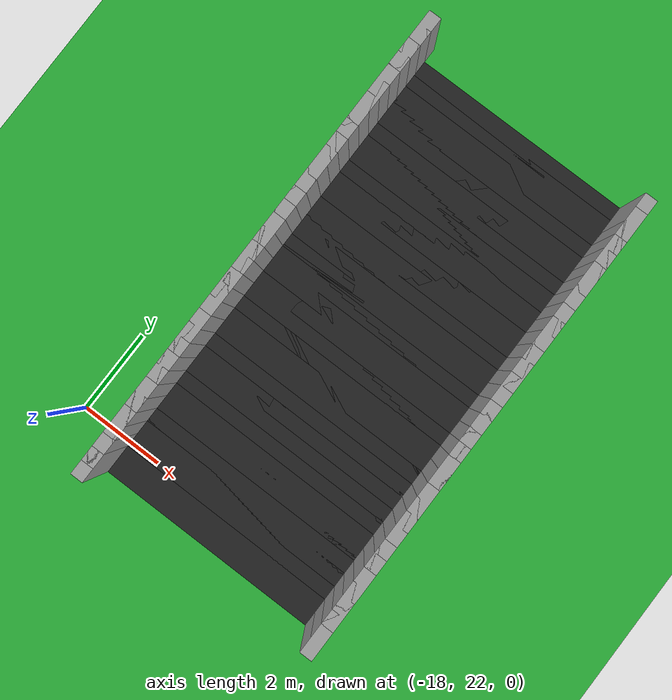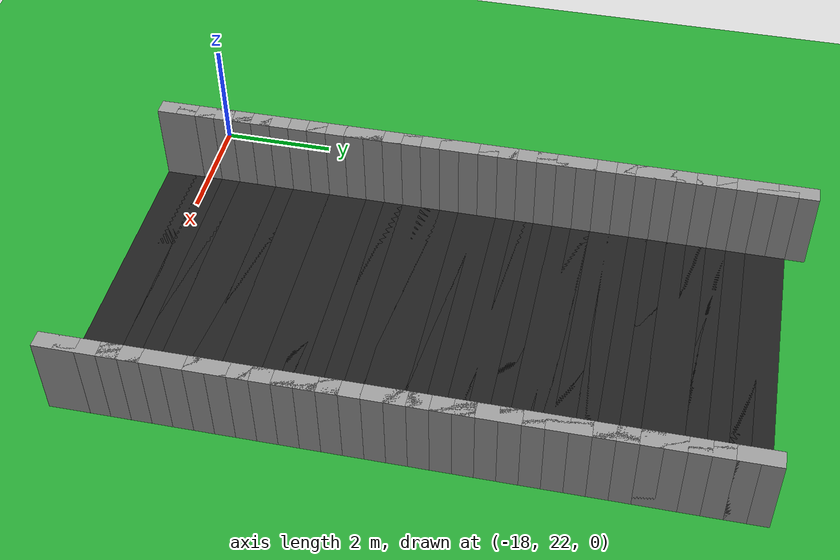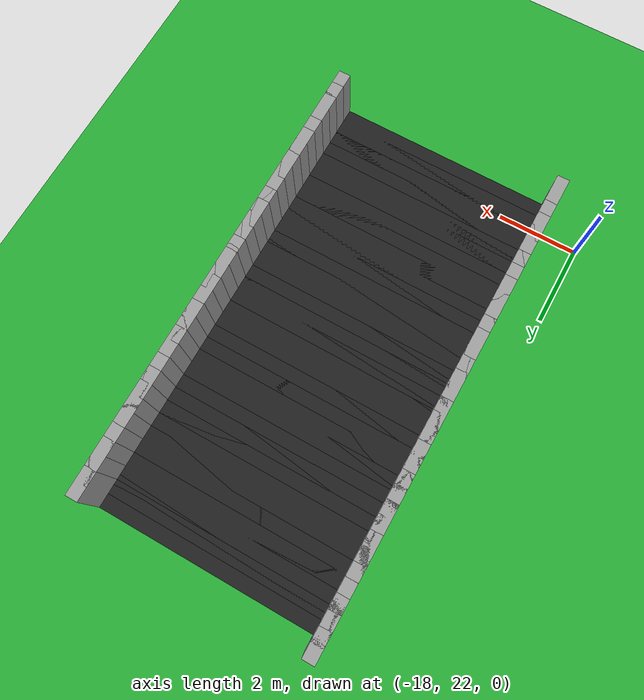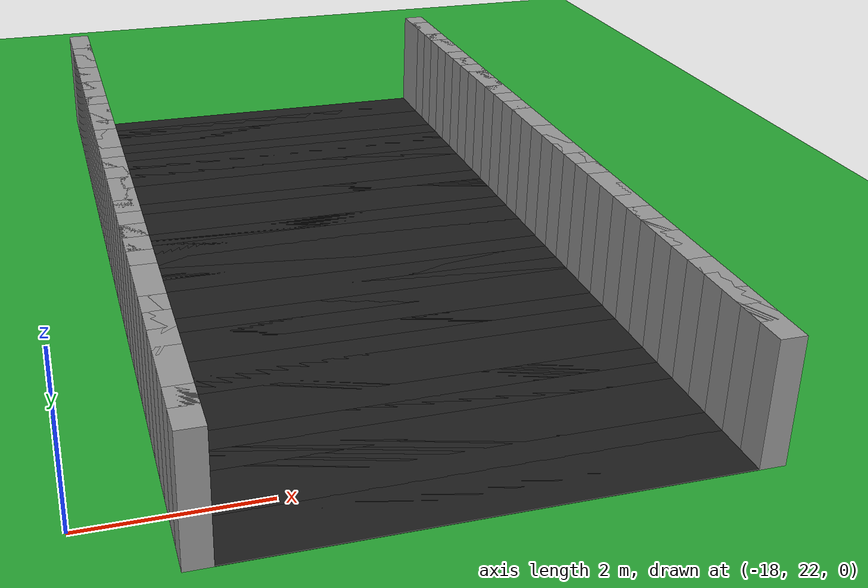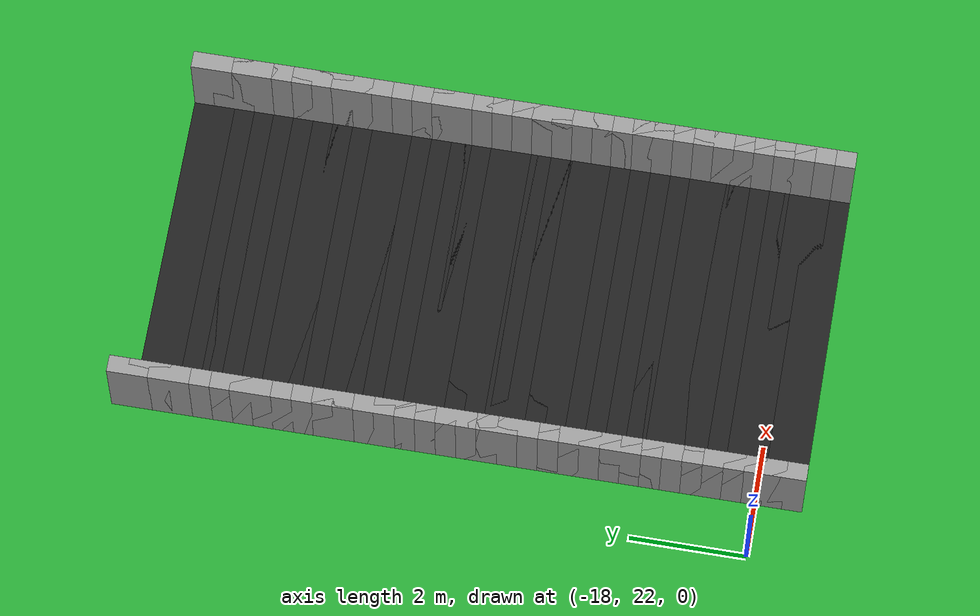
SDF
<sdf version="1.6">
 <world name="loop_speedloop">
  <include><uri>model://sun</uri></include>
  <model name="ground_plane">
   <static>true</static>
   <link name="link">
    <collision name="collision">
     <surface><friction><ode><mu>100</mu><mu2>50</mu2></ode></friction></surface>
     <geometry><plane><normal>0 0 1</normal><size>120 120</size></plane></geometry>
    </collision>
    <visual name="visual">
     <geometry><plane><normal>0 0 1</normal><size>120 120</size></plane></geometry>
     <material>
      <script><uri>file://media/materials/scripts/gazebo.material</uri><name>Gazebo/Green</name></script>
     </material>
    </visual>
   </link>
  </model>
  <model name="curbR_403">
   <static>true</static>
   <pose>-16.900 32.772 0.750 0 0 -1.57080</pose>
   <link name="link">
    <collision name="collision"><geometry><box><size>0.711 0.300 1.500</size></box></geometry></collision>
    <visual name="visual">
     <geometry><box><size>0.711 0.300 1.500</size></box></geometry>
     <material>
      <script><uri>file://media/materials/scripts/gazebo.material</uri><name>Gazebo/Grey</name></script>
     </material>
    </visual>
   </link>
  </model>
  <model name="asphalt_404">
   <static>true</static>
   <pose>-14.000 32.421 0.005 0 0 -1.57080</pose>
   <link name="link">
    <visual name="visual">
     <geometry><box><size>0.711 5.500 0.010</size></box></geometry>
     <material>
      <script><uri>file://media/materials/scripts/gazebo.material</uri><name>Gazebo/Black</name></script>
     </material>
    </visual>
   </link>
  </model>
  <model name="curbL_404">
   <static>true</static>
   <pose>-11.100 32.421 0.750 0 0 -1.57080</pose>
   <link name="link">
    <collision name="collision"><geometry><box><size>0.711 0.300 1.500</size></box></geometry></collision>
    <visual name="visual">
     <geometry><box><size>0.711 0.300 1.500</size></box></geometry>
     <material>
      <script><uri>file://media/materials/scripts/gazebo.material</uri><name>Gazebo/Grey</name></script>
     </material>
    </visual>
   </link>
  </model>
  <model name="curbR_404">
   <static>true</static>
   <pose>-16.900 32.421 0.750 0 0 -1.57080</pose>
   <link name="link">
    <collision name="collision"><geometry><box><size>0.711 0.300 1.500</size></box></geometry></collision>
    <visual name="visual">
     <geometry><box><size>0.711 0.300 1.500</size></box></geometry>
     <material>
      <script><uri>file://media/materials/scripts/gazebo.material</uri><name>Gazebo/Grey</name></script>
     </material>
    </visual>
   </link>
  </model>
  <model name="asphalt_405">
   <static>true</static>
   <pose>-14.000 32.071 0.005 0 0 -1.57080</pose>
   <link name="link">
    <visual name="visual">
     <geometry><box><size>0.711 5.500 0.010</size></box></geometry>
     <material>
      <script><uri>file://media/materials/scripts/gazebo.material</uri><name>Gazebo/Black</name></script>
     </material>
    </visual>
   </link>
  </model>
  <model name="curbL_405">
   <static>true</static>
   <pose>-11.100 32.071 0.750 0 0 -1.57080</pose>
   <link name="link">
    <collision name="collision"><geometry><box><size>0.711 0.300 1.500</size></box></geometry></collision>
    <visual name="visual">
     <geometry><box><size>0.711 0.300 1.500</size></box></geometry>
     <material>
      <script><uri>file://media/materials/scripts/gazebo.material</uri><name>Gazebo/Grey</name></script>
     </material>
    </visual>
   </link>
  </model>
  <model name="curbR_405">
   <static>true</static>
   <pose>-16.900 32.071 0.750 0 0 -1.57080</pose>
   <link name="link">
    <collision name="collision"><geometry><box><size>0.711 0.300 1.500</size></box></geometry></collision>
    <visual name="visual">
     <geometry><box><size>0.711 0.300 1.500</size></box></geometry>
     <material>
      <script><uri>file://media/materials/scripts/gazebo.material</uri><name>Gazebo/Grey</name></script>
     </material>
    </visual>
   </link>
  </model>
  <model name="asphalt_406">
   <static>true</static>
   <pose>-14.000 31.720 0.005 0 0 -1.57080</pose>
   <link name="link">
    <visual name="visual">
     <geometry><box><size>0.711 5.500 0.010</size></box></geometry>
     <material>
      <script><uri>file://media/materials/scripts/gazebo.material</uri><name>Gazebo/Black</name></script>
     </material>
    </visual>
   </link>
  </model>
  <model name="curbL_406">
   <static>true</static>
   <pose>-11.100 31.720 0.750 0 0 -1.57080</pose>
   <link name="link">
    <collision name="collision"><geometry><box><size>0.711 0.300 1.500</size></box></geometry></collision>
    <visual name="visual">
     <geometry><box><size>0.711 0.300 1.500</size></box></geometry>
     <material>
      <script><uri>file://media/materials/scripts/gazebo.material</uri><name>Gazebo/Grey</name></script>
     </material>
    </visual>
   </link>
  </model>
  <model name="curbR_406">
   <static>true</static>
   <pose>-16.900 31.720 0.750 0 0 -1.57080</pose>
   <link name="link">
    <collision name="collision"><geometry><box><size>0.711 0.300 1.500</size></box></geometry></collision>
    <visual name="visual">
     <geometry><box><size>0.711 0.300 1.500</size></box></geometry>
     <material>
      <script><uri>file://media/materials/scripts/gazebo.material</uri><name>Gazebo/Grey</name></script>
     </material>
    </visual>
   </link>
  </model>
  <model name="asphalt_407">
   <static>true</static>
   <pose>-14.000 31.369 0.005 0 0 -1.57080</pose>
   <link name="link">
    <visual name="visual">
     <geometry><box><size>0.711 5.500 0.010</size></box></geometry>
     <material>
      <script><uri>file://media/materials/scripts/gazebo.material</uri><name>Gazebo/Black</name></script>
     </material>
    </visual>
   </link>
  </model>
  <model name="curbL_407">
   <static>true</static>
   <pose>-11.100 31.369 0.750 0 0 -1.57080</pose>
   <link name="link">
    <collision name="collision"><geometry><box><size>0.711 0.300 1.500</size></box></geometry></collision>
    <visual name="visual">
     <geometry><box><size>0.711 0.300 1.500</size></box></geometry>
     <material>
      <script><uri>file://media/materials/scripts/gazebo.material</uri><name>Gazebo/Grey</name></script>
     </material>
    </visual>
   </link>
  </model>
  <model name="curbR_407">
   <static>true</static>
   <pose>-16.900 31.369 0.750 0 0 -1.57080</pose>
   <link name="link">
    <collision name="collision"><geometry><box><size>0.711 0.300 1.500</size></box></geometry></collision>
    <visual name="visual">
     <geometry><box><size>0.711 0.300 1.500</size></box></geometry>
     <material>
      <script><uri>file://media/materials/scripts/gazebo.material</uri><name>Gazebo/Grey</name></script>
     </material>
    </visual>
   </link>
  </model>
  <model name="asphalt_408">
   <static>true</static>
   <pose>-14.000 31.018 0.005 0 0 -1.57080</pose>
   <link name="link">
    <visual name="visual">
     <geometry><box><size>0.711 5.500 0.010</size></box></geometry>
     <material>
      <script><uri>file://media/materials/scripts/gazebo.material</uri><name>Gazebo/Black</name></script>
     </material>
    </visual>
   </link>
  </model>
  <model name="curbL_408">
   <static>true</static>
   <pose>-11.100 31.018 0.750 0 0 -1.57080</pose>
   <link name="link">
    <collision name="collision"><geometry><box><size>0.711 0.300 1.500</size></box></geometry></collision>
    <visual name="visual">
     <geometry><box><size>0.711 0.300 1.500</size></box></geometry>
     <material>
      <script><uri>file://media/materials/scripts/gazebo.material</uri><name>Gazebo/Grey</name></script>
     </material>
    </visual>
   </link>
  </model>
  <model name="curbR_408">
   <static>true</static>
   <pose>-16.900 31.018 0.750 0 0 -1.57080</pose>
   <link name="link">
    <collision name="collision"><geometry><box><size>0.711 0.300 1.500</size></box></geometry></collision>
    <visual name="visual">
     <geometry><box><size>0.711 0.300 1.500</size></box></geometry>
     <material>
      <script><uri>file://media/materials/scripts/gazebo.material</uri><name>Gazebo/Grey</name></script>
     </material>
    </visual>
   </link>
  </model>
  <model name="asphalt_409">
   <static>true</static>
   <pose>-14.000 30.667 0.005 0 0 -1.57080</pose>
   <link name="link">
    <visual name="visual">
     <geometry><box><size>0.711 5.500 0.010</size></box></geometry>
     <material>
      <script><uri>file://media/materials/scripts/gazebo.material</uri><name>Gazebo/Black</name></script>
     </material>
    </visual>
   </link>
  </model>
  <model name="curbL_409">
   <static>true</static>
   <pose>-11.100 30.667 0.750 0 0 -1.57080</pose>
   <link name="link">
    <collision name="collision"><geometry><box><size>0.711 0.300 1.500</size></box></geometry></collision>
    <visual name="visual">
     <geometry><box><size>0.711 0.300 1.500</size></box></geometry>
     <material>
      <script><uri>file://media/materials/scripts/gazebo.material</uri><name>Gazebo/Grey</name></script>
     </material>
    </visual>
   </link>
  </model>
  <model name="curbR_409">
   <static>true</static>
   <pose>-16.900 30.667 0.750 0 0 -1.57080</pose>
   <link name="link">
    <collision name="collision"><geometry><box><size>0.711 0.300 1.500</size></box></geometry></collision>
    <visual name="visual">
     <geometry><box><size>0.711 0.300 1.500</size></box></geometry>
     <material>
      <script><uri>file://media/materials/scripts/gazebo.material</uri><name>Gazebo/Grey</name></script>
     </material>
    </visual>
   </link>
  </model>
  <model name="asphalt_410">
   <static>true</static>
   <pose>-14.000 30.316 0.005 0 0 -1.57080</pose>
   <link name="link">
    <visual name="visual">
     <geometry><box><size>0.711 5.500 0.010</size></box></geometry>
     <material>
      <script><uri>file://media/materials/scripts/gazebo.material</uri><name>Gazebo/Black</name></script>
     </material>
    </visual>
   </link>
  </model>
  <model name="curbL_410">
   <static>true</static>
   <pose>-11.100 30.316 0.750 0 0 -1.57080</pose>
   <link name="link">
    <collision name="collision"><geometry><box><size>0.711 0.300 1.500</size></box></geometry></collision>
    <visual name="visual">
     <geometry><box><size>0.711 0.300 1.500</size></box></geometry>
     <material>
      <script><uri>file://media/materials/scripts/gazebo.material</uri><name>Gazebo/Grey</name></script>
     </material>
    </visual>
   </link>
  </model>
  <model name="curbR_410">
   <static>true</static>
   <pose>-16.900 30.316 0.750 0 0 -1.57080</pose>
   <link name="link">
    <collision name="collision"><geometry><box><size>0.711 0.300 1.500</size></box></geometry></collision>
    <visual name="visual">
     <geometry><box><size>0.711 0.300 1.500</size></box></geometry>
     <material>
      <script><uri>file://media/materials/scripts/gazebo.material</uri><name>Gazebo/Grey</name></script>
     </material>
    </visual>
   </link>
  </model>
  <model name="asphalt_411">
   <static>true</static>
   <pose>-14.000 29.965 0.005 0 0 -1.57080</pose>
   <link name="link">
    <visual name="visual">
     <geometry><box><size>0.711 5.500 0.010</size></box></geometry>
     <material>
      <script><uri>file://media/materials/scripts/gazebo.material</uri><name>Gazebo/Black</name></script>
     </material>
    </visual>
   </link>
  </model>
  <model name="curbL_411">
   <static>true</static>
   <pose>-11.100 29.965 0.750 0 0 -1.57080</pose>
   <link name="link">
    <collision name="collision"><geometry><box><size>0.711 0.300 1.500</size></box></geometry></collision>
    <visual name="visual">
     <geometry><box><size>0.711 0.300 1.500</size></box></geometry>
     <material>
      <script><uri>file://media/materials/scripts/gazebo.material</uri><name>Gazebo/Grey</name></script>
     </material>
    </visual>
   </link>
  </model>
  <model name="curbR_411">
   <static>true</static>
   <pose>-16.900 29.965 0.750 0 0 -1.57080</pose>
   <link name="link">
    <collision name="collision"><geometry><box><size>0.711 0.300 1.500</size></box></geometry></collision>
    <visual name="visual">
     <geometry><box><size>0.711 0.300 1.500</size></box></geometry>
     <material>
      <script><uri>file://media/materials/scripts/gazebo.material</uri><name>Gazebo/Grey</name></script>
     </material>
    </visual>
   </link>
  </model>
  <model name="asphalt_412">
   <static>true</static>
   <pose>-14.000 29.614 0.005 0 0 -1.57080</pose>
   <link name="link">
    <visual name="visual">
     <geometry><box><size>0.711 5.500 0.010</size></box></geometry>
     <material>
      <script><uri>file://media/materials/scripts/gazebo.material</uri><name>Gazebo/Black</name></script>
     </material>
    </visual>
   </link>
  </model>
  <model name="curbL_412">
   <static>true</static>
   <pose>-11.100 29.614 0.750 0 0 -1.57080</pose>
   <link name="link">
    <collision name="collision"><geometry><box><size>0.711 0.300 1.500</size></box></geometry></collision>
    <visual name="visual">
     <geometry><box><size>0.711 0.300 1.500</size></box></geometry>
     <material>
      <script><uri>file://media/materials/scripts/gazebo.material</uri><name>Gazebo/Grey</name></script>
     </material>
    </visual>
   </link>
  </model>
  <model name="curbR_412">
   <static>true</static>
   <pose>-16.900 29.614 0.750 0 0 -1.57080</pose>
   <link name="link">
    <collision name="collision"><geometry><box><size>0.711 0.300 1.500</size></box></geometry></collision>
    <visual name="visual">
     <geometry><box><size>0.711 0.300 1.500</size></box></geometry>
     <material>
      <script><uri>file://media/materials/scripts/gazebo.material</uri><name>Gazebo/Grey</name></script>
     </material>
    </visual>
   </link>
  </model>
  <model name="asphalt_413">
   <static>true</static>
   <pose>-14.000 29.264 0.005 0 0 -1.57080</pose>
   <link name="link">
    <visual name="visual">
     <geometry><box><size>0.711 5.500 0.010</size></box></geometry>
     <material>
      <script><uri>file://media/materials/scripts/gazebo.material</uri><name>Gazebo/Black</name></script>
     </material>
    </visual>
   </link>
  </model>
  <model name="curbL_413">
   <static>true</static>
   <pose>-11.100 29.264 0.750 0 0 -1.57080</pose>
   <link name="link">
    <collision name="collision"><geometry><box><size>0.711 0.300 1.500</size></box></geometry></collision>
    <visual name="visual">
     <geometry><box><size>0.711 0.300 1.500</size></box></geometry>
     <material>
      <script><uri>file://media/materials/scripts/gazebo.material</uri><name>Gazebo/Grey</name></script>
     </material>
    </visual>
   </link>
  </model>
  <model name="curbR_413">
   <static>true</static>
   <pose>-16.900 29.264 0.750 0 0 -1.57080</pose>
   <link name="link">
    <collision name="collision"><geometry><box><size>0.711 0.300 1.500</size></box></geometry></collision>
    <visual name="visual">
     <geometry><box><size>0.711 0.300 1.500</size></box></geometry>
     <material>
      <script><uri>file://media/materials/scripts/gazebo.material</uri><name>Gazebo/Grey</name></script>
     </material>
    </visual>
   </link>
  </model>
  <model name="asphalt_414">
   <static>true</static>
   <pose>-14.000 28.913 0.005 0 0 -1.57080</pose>
   <link name="link">
    <visual name="visual">
     <geometry><box><size>0.711 5.500 0.010</size></box></geometry>
     <material>
      <script><uri>file://media/materials/scripts/gazebo.material</uri><name>Gazebo/Black</name></script>
     </material>
    </visual>
   </link>
  </model>
  <model name="curbL_414">
   <static>true</static>
   <pose>-11.100 28.913 0.750 0 0 -1.57080</pose>
   <link name="link">
    <collision name="collision"><geometry><box><size>0.711 0.300 1.500</size></box></geometry></collision>
    <visual name="visual">
     <geometry><box><size>0.711 0.300 1.500</size></box></geometry>
     <material>
      <script><uri>file://media/materials/scripts/gazebo.material</uri><name>Gazebo/Grey</name></script>
     </material>
    </visual>
   </link>
  </model>
  <model name="curbR_414">
   <static>true</static>
   <pose>-16.900 28.913 0.750 0 0 -1.57080</pose>
   <link name="link">
    <collision name="collision"><geometry><box><size>0.711 0.300 1.500</size></box></geometry></collision>
    <visual name="visual">
     <geometry><box><size>0.711 0.300 1.500</size></box></geometry>
     <material>
      <script><uri>file://media/materials/scripts/gazebo.material</uri><name>Gazebo/Grey</name></script>
     </material>
    </visual>
   </link>
  </model>
  <model name="asphalt_415">
   <static>true</static>
   <pose>-14.000 28.562 0.005 0 0 -1.57080</pose>
   <link name="link">
    <visual name="visual">
     <geometry><box><size>0.711 5.500 0.010</size></box></geometry>
     <material>
      <script><uri>file://media/materials/scripts/gazebo.material</uri><name>Gazebo/Black</name></script>
     </material>
    </visual>
   </link>
  </model>
  <model name="curbL_415">
   <static>true</static>
   <pose>-11.100 28.562 0.750 0 0 -1.57080</pose>
   <link name="link">
    <collision name="collision"><geometry><box><size>0.711 0.300 1.500</size></box></geometry></collision>
    <visual name="visual">
     <geometry><box><size>0.711 0.300 1.500</size></box></geometry>
     <material>
      <script><uri>file://media/materials/scripts/gazebo.material</uri><name>Gazebo/Grey</name></script>
     </material>
    </visual>
   </link>
  </model>
  <model name="curbR_415">
   <static>true</static>
   <pose>-16.900 28.562 0.750 0 0 -1.57080</pose>
   <link name="link">
    <collision name="collision"><geometry><box><size>0.711 0.300 1.500</size></box></geometry></collision>
    <visual name="visual">
     <geometry><box><size>0.711 0.300 1.500</size></box></geometry>
     <material>
      <script><uri>file://media/materials/scripts/gazebo.material</uri><name>Gazebo/Grey</name></script>
     </material>
    </visual>
   </link>
  </model>
  <model name="asphalt_416">
   <static>true</static>
   <pose>-14.000 28.211 0.005 0 0 -1.57080</pose>
   <link name="link">
    <visual name="visual">
     <geometry><box><size>0.711 5.500 0.010</size></box></geometry>
     <material>
      <script><uri>file://media/materials/scripts/gazebo.material</uri><name>Gazebo/Black</name></script>
     </material>
    </visual>
   </link>
  </model>
  <model name="curbL_416">
   <static>true</static>
   <pose>-11.100 28.211 0.750 0 0 -1.57080</pose>
   <link name="link">
    <collision name="collision"><geometry><box><size>0.711 0.300 1.500</size></box></geometry></collision>
    <visual name="visual">
     <geometry><box><size>0.711 0.300 1.500</size></box></geometry>
     <material>
      <script><uri>file://media/materials/scripts/gazebo.material</uri><name>Gazebo/Grey</name></script>
     </material>
    </visual>
   </link>
  </model>
  <model name="curbR_416">
   <static>true</static>
   <pose>-16.900 28.211 0.750 0 0 -1.57080</pose>
   <link name="link">
    <collision name="collision"><geometry><box><size>0.711 0.300 1.500</size></box></geometry></collision>
    <visual name="visual">
     <geometry><box><size>0.711 0.300 1.500</size></box></geometry>
     <material>
      <script><uri>file://media/materials/scripts/gazebo.material</uri><name>Gazebo/Grey</name></script>
     </material>
    </visual>
   </link>
  </model>
  <model name="asphalt_417">
   <static>true</static>
   <pose>-14.000 27.860 0.005 0 0 -1.57080</pose>
   <link name="link">
    <visual name="visual">
     <geometry><box><size>0.711 5.500 0.010</size></box></geometry>
     <material>
      <script><uri>file://media/materials/scripts/gazebo.material</uri><name>Gazebo/Black</name></script>
     </material>
    </visual>
   </link>
  </model>
  <model name="curbL_417">
   <static>true</static>
   <pose>-11.100 27.860 0.750 0 0 -1.57080</pose>
   <link name="link">
    <collision name="collision"><geometry><box><size>0.711 0.300 1.500</size></box></geometry></collision>
    <visual name="visual">
     <geometry><box><size>0.711 0.300 1.500</size></box></geometry>
     <material>
      <script><uri>file://media/materials/scripts/gazebo.material</uri><name>Gazebo/Grey</name></script>
     </material>
    </visual>
   </link>
  </model>
  <model name="curbR_417">
   <static>true</static>
   <pose>-16.900 27.860 0.750 0 0 -1.57080</pose>
   <link name="link">
    <collision name="collision"><geometry><box><size>0.711 0.300 1.500</size></box></geometry></collision>
    <visual name="visual">
     <geometry><box><size>0.711 0.300 1.500</size></box></geometry>
     <material>
      <script><uri>file://media/materials/scripts/gazebo.material</uri><name>Gazebo/Grey</name></script>
     </material>
    </visual>
   </link>
  </model>
  <model name="asphalt_418">
   <static>true</static>
   <pose>-14.000 27.509 0.005 0 0 -1.57080</pose>
   <link name="link">
    <visual name="visual">
     <geometry><box><size>0.711 5.500 0.010</size></box></geometry>
     <material>
      <script><uri>file://media/materials/scripts/gazebo.material</uri><name>Gazebo/Black</name></script>
     </material>
    </visual>
   </link>
  </model>
  <model name="curbL_418">
   <static>true</static>
   <pose>-11.100 27.509 0.750 0 0 -1.57080</pose>
   <link name="link">
    <collision name="collision"><geometry><box><size>0.711 0.300 1.500</size></box></geometry></collision>
    <visual name="visual">
     <geometry><box><size>0.711 0.300 1.500</size></box></geometry>
     <material>
      <script><uri>file://media/materials/scripts/gazebo.material</uri><name>Gazebo/Grey</name></script>
     </material>
    </visual>
   </link>
  </model>
  <model name="curbR_418">
   <static>true</static>
   <pose>-16.900 27.509 0.750 0 0 -1.57080</pose>
   <link name="link">
    <collision name="collision"><geometry><box><size>0.711 0.300 1.500</size></box></geometry></collision>
    <visual name="visual">
     <geometry><box><size>0.711 0.300 1.500</size></box></geometry>
     <material>
      <script><uri>file://media/materials/scripts/gazebo.material</uri><name>Gazebo/Grey</name></script>
     </material>
    </visual>
   </link>
  </model>
  <model name="asphalt_419">
   <static>true</static>
   <pose>-14.000 27.158 0.005 0 0 -1.57080</pose>
   <link name="link">
    <visual name="visual">
     <geometry><box><size>0.711 5.500 0.010</size></box></geometry>
     <material>
      <script><uri>file://media/materials/scripts/gazebo.material</uri><name>Gazebo/Black</name></script>
     </material>
    </visual>
   </link>
  </model>
  <model name="curbL_419">
   <static>true</static>
   <pose>-11.100 27.158 0.750 0 0 -1.57080</pose>
   <link name="link">
    <collision name="collision"><geometry><box><size>0.711 0.300 1.500</size></box></geometry></collision>
    <visual name="visual">
     <geometry><box><size>0.711 0.300 1.500</size></box></geometry>
     <material>
      <script><uri>file://media/materials/scripts/gazebo.material</uri><name>Gazebo/Grey</name></script>
     </material>
    </visual>
   </link>
  </model>
  <model name="curbR_419">
   <static>true</static>
   <pose>-16.900 27.158 0.750 0 0 -1.57080</pose>
   <link name="link">
    <collision name="collision"><geometry><box><size>0.711 0.300 1.500</size></box></geometry></collision>
    <visual name="visual">
     <geometry><box><size>0.711 0.300 1.500</size></box></geometry>
     <material>
      <script><uri>file://media/materials/scripts/gazebo.material</uri><name>Gazebo/Grey</name></script>
     </material>
    </visual>
   </link>
  </model>
  <model name="asphalt_420">
   <static>true</static>
   <pose>-14.000 26.807 0.005 0 0 -1.57080</pose>
   <link name="link">
    <visual name="visual">
     <geometry><box><size>0.711 5.500 0.010</size></box></geometry>
     <material>
      <script><uri>file://media/materials/scripts/gazebo.material</uri><name>Gazebo/Black</name></script>
     </material>
    </visual>
   </link>
  </model>
  <model name="curbL_420">
   <static>true</static>
   <pose>-11.100 26.807 0.750 0 0 -1.57080</pose>
   <link name="link">
    <collision name="collision"><geometry><box><size>0.711 0.300 1.500</size></box></geometry></collision>
    <visual name="visual">
     <geometry><box><size>0.711 0.300 1.500</size></box></geometry>
     <material>
      <script><uri>file://media/materials/scripts/gazebo.material</uri><name>Gazebo/Grey</name></script>
     </material>
    </visual>
   </link>
  </model>
  <model name="curbR_420">
   <static>true</static>
   <pose>-16.900 26.807 0.750 0 0 -1.57080</pose>
   <link name="link">
    <collision name="collision"><geometry><box><size>0.711 0.300 1.500</size></box></geometry></collision>
    <visual name="visual">
     <geometry><box><size>0.711 0.300 1.500</size></box></geometry>
     <material>
      <script><uri>file://media/materials/scripts/gazebo.material</uri><name>Gazebo/Grey</name></script>
     </material>
    </visual>
   </link>
  </model>
  <model name="asphalt_421">
   <static>true</static>
   <pose>-14.000 26.457 0.005 0 0 -1.57080</pose>
   <link name="link">
    <visual name="visual">
     <geometry><box><size>0.711 5.500 0.010</size></box></geometry>
     <material>
      <script><uri>file://media/materials/scripts/gazebo.material</uri><name>Gazebo/Black</name></script>
     </material>
    </visual>
   </link>
  </model>
  <model name="curbL_421">
   <static>true</static>
   <pose>-11.100 26.457 0.750 0 0 -1.57080</pose>
   <link name="link">
    <collision name="collision"><geometry><box><size>0.711 0.300 1.500</size></box></geometry></collision>
    <visual name="visual">
     <geometry><box><size>0.711 0.300 1.500</size></box></geometry>
     <material>
      <script><uri>file://media/materials/scripts/gazebo.material</uri><name>Gazebo/Grey</name></script>
     </material>
    </visual>
   </link>
  </model>
  <model name="curbR_421">
   <static>true</static>
   <pose>-16.900 26.457 0.750 0 0 -1.57080</pose>
   <link name="link">
    <collision name="collision"><geometry><box><size>0.711 0.300 1.500</size></box></geometry></collision>
    <visual name="visual">
     <geometry><box><size>0.711 0.300 1.500</size></box></geometry>
     <material>
      <script><uri>file://media/materials/scripts/gazebo.material</uri><name>Gazebo/Grey</name></script>
     </material>
    </visual>
   </link>
  </model>
  <model name="asphalt_422">
   <static>true</static>
   <pose>-14.000 26.106 0.005 0 0 -1.57080</pose>
   <link name="link">
    <visual name="visual">
     <geometry><box><size>0.711 5.500 0.010</size></box></geometry>
     <material>
      <script><uri>file://media/materials/scripts/gazebo.material</uri><name>Gazebo/Black</name></script>
     </material>
    </visual>
   </link>
  </model>
  <model name="curbL_422">
   <static>true</static>
   <pose>-11.100 26.106 0.750 0 0 -1.57080</pose>
   <link name="link">
    <collision name="collision"><geometry><box><size>0.711 0.300 1.500</size></box></geometry></collision>
    <visual name="visual">
     <geometry><box><size>0.711 0.300 1.500</size></box></geometry>
     <material>
      <script><uri>file://media/materials/scripts/gazebo.material</uri><name>Gazebo/Grey</name></script>
     </material>
    </visual>
   </link>
  </model>
  <model name="curbR_422">
   <static>true</static>
   <pose>-16.900 26.106 0.750 0 0 -1.57080</pose>
   <link name="link">
    <collision name="collision"><geometry><box><size>0.711 0.300 1.500</size></box></geometry></collision>
    <visual name="visual">
     <geometry><box><size>0.711 0.300 1.500</size></box></geometry>
     <material>
      <script><uri>file://media/materials/scripts/gazebo.material</uri><name>Gazebo/Grey</name></script>
     </material>
    </visual>
   </link>
  </model>
  <model name="asphalt_423">
   <static>true</static>
   <pose>-14.000 25.755 0.005 0 0 -1.57080</pose>
   <link name="link">
    <visual name="visual">
     <geometry><box><size>0.711 5.500 0.010</size></box></geometry>
     <material>
      <script><uri>file://media/materials/scripts/gazebo.material</uri><name>Gazebo/Black</name></script>
     </material>
    </visual>
   </link>
  </model>
  <model name="curbL_423">
   <static>true</static>
   <pose>-11.100 25.755 0.750 0 0 -1.57080</pose>
   <link name="link">
    <collision name="collision"><geometry><box><size>0.711 0.300 1.500</size></box></geometry></collision>
    <visual name="visual">
     <geometry><box><size>0.711 0.300 1.500</size></box></geometry>
     <material>
      <script><uri>file://media/materials/scripts/gazebo.material</uri><name>Gazebo/Grey</name></script>
     </material>
    </visual>
   </link>
  </model>
  <model name="curbR_423">
   <static>true</static>
   <pose>-16.900 25.755 0.750 0 0 -1.57080</pose>
   <link name="link">
    <collision name="collision"><geometry><box><size>0.711 0.300 1.500</size></box></geometry></collision>
    <visual name="visual">
     <geometry><box><size>0.711 0.300 1.500</size></box></geometry>
     <material>
      <script><uri>file://media/materials/scripts/gazebo.material</uri><name>Gazebo/Grey</name></script>
     </material>
    </visual>
   </link>
  </model>
  <model name="asphalt_424">
   <static>true</static>
   <pose>-14.000 25.404 0.005 0 0 -1.57080</pose>
   <link name="link">
    <visual name="visual">
     <geometry><box><size>0.711 5.500 0.010</size></box></geometry>
     <material>
      <script><uri>file://media/materials/scripts/gazebo.material</uri><name>Gazebo/Black</name></script>
     </material>
    </visual>
   </link>
  </model>
  <model name="curbL_424">
   <static>true</static>
   <pose>-11.100 25.404 0.750 0 0 -1.57080</pose>
   <link name="link">
    <collision name="collision"><geometry><box><size>0.711 0.300 1.500</size></box></geometry></collision>
    <visual name="visual">
     <geometry><box><size>0.711 0.300 1.500</size></box></geometry>
     <material>
      <script><uri>file://media/materials/scripts/gazebo.material</uri><name>Gazebo/Grey</name></script>
     </material>
    </visual>
   </link>
  </model>
  <model name="curbR_424">
   <static>true</static>
   <pose>-16.900 25.404 0.750 0 0 -1.57080</pose>
   <link name="link">
    <collision name="collision"><geometry><box><size>0.711 0.300 1.500</size></box></geometry></collision>
    <visual name="visual">
     <geometry><box><size>0.711 0.300 1.500</size></box></geometry>
     <material>
      <script><uri>file://media/materials/scripts/gazebo.material</uri><name>Gazebo/Grey</name></script>
     </material>
    </visual>
   </link>
  </model>
  <model name="asphalt_425">
   <static>true</static>
   <pose>-14.000 25.053 0.005 0 0 -1.57080</pose>
   <link name="link">
    <visual name="visual">
     <geometry><box><size>0.711 5.500 0.010</size></box></geometry>
     <material>
      <script><uri>file://media/materials/scripts/gazebo.material</uri><name>Gazebo/Black</name></script>
     </material>
    </visual>
   </link>
  </model>
  <model name="curbL_425">
   <static>true</static>
   <pose>-11.100 25.053 0.750 0 0 -1.57080</pose>
   <link name="link">
    <collision name="collision"><geometry><box><size>0.711 0.300 1.500</size></box></geometry></collision>
    <visual name="visual">
     <geometry><box><size>0.711 0.300 1.500</size></box></geometry>
     <material>
      <script><uri>file://media/materials/scripts/gazebo.material</uri><name>Gazebo/Grey</name></script>
     </material>
    </visual>
   </link>
  </model>
  <model name="curbR_425">
   <static>true</static>
   <pose>-16.900 25.053 0.750 0 0 -1.57080</pose>
   <link name="link">
    <collision name="collision"><geometry><box><size>0.711 0.300 1.500</size></box></geometry></collision>
    <visual name="visual">
     <geometry><box><size>0.711 0.300 1.500</size></box></geometry>
     <material>
      <script><uri>file://media/materials/scripts/gazebo.material</uri><name>Gazebo/Grey</name></script>
     </material>
    </visual>
   </link>
  </model>
  <model name="asphalt_426">
   <static>true</static>
   <pose>-14.000 24.702 0.005 0 0 -1.57080</pose>
   <link name="link">
    <visual name="visual">
     <geometry><box><size>0.711 5.500 0.010</size></box></geometry>
     <material>
      <script><uri>file://media/materials/scripts/gazebo.material</uri><name>Gazebo/Black</name></script>
     </material>
    </visual>
   </link>
  </model>
  <model name="curbL_426">
   <static>true</static>
   <pose>-11.100 24.702 0.750 0 0 -1.57080</pose>
   <link name="link">
    <collision name="collision"><geometry><box><size>0.711 0.300 1.500</size></box></geometry></collision>
    <visual name="visual">
     <geometry><box><size>0.711 0.300 1.500</size></box></geometry>
     <material>
      <script><uri>file://media/materials/scripts/gazebo.material</uri><name>Gazebo/Grey</name></script>
     </material>
    </visual>
   </link>
  </model>
  <model name="curbR_426">
   <static>true</static>
   <pose>-16.900 24.702 0.750 0 0 -1.57080</pose>
   <link name="link">
    <collision name="collision"><geometry><box><size>0.711 0.300 1.500</size></box></geometry></collision>
    <visual name="visual">
     <geometry><box><size>0.711 0.300 1.500</size></box></geometry>
     <material>
      <script><uri>file://media/materials/scripts/gazebo.material</uri><name>Gazebo/Grey</name></script>
     </material>
    </visual>
   </link>
  </model>
  <model name="asphalt_427">
   <static>true</static>
   <pose>-14.000 24.351 0.005 0 0 -1.57080</pose>
   <link name="link">
    <visual name="visual">
     <geometry><box><size>0.711 5.500 0.010</size></box></geometry>
     <material>
      <script><uri>file://media/materials/scripts/gazebo.material</uri><name>Gazebo/Black</name></script>
     </material>
    </visual>
   </link>
  </model>
  <model name="curbL_427">
   <static>true</static>
   <pose>-11.100 24.351 0.750 0 0 -1.57080</pose>
   <link name="link">
    <collision name="collision"><geometry><box><size>0.711 0.300 1.500</size></box></geometry></collision>
    <visual name="visual">
     <geometry><box><size>0.711 0.300 1.500</size></box></geometry>
     <material>
      <script><uri>file://media/materials/scripts/gazebo.material</uri><name>Gazebo/Grey</name></script>
     </material>
    </visual>
   </link>
  </model>
  <model name="curbR_427">
   <static>true</static>
   <pose>-16.900 24.351 0.750 0 0 -1.57080</pose>
   <link name="link">
    <collision name="collision"><geometry><box><size>0.711 0.300 1.500</size></box></geometry></collision>
    <visual name="visual">
     <geometry><box><size>0.711 0.300 1.500</size></box></geometry>
     <material>
      <script><uri>file://media/materials/scripts/gazebo.material</uri><name>Gazebo/Grey</name></script>
     </material>
    </visual>
   </link>
  </model>
  <model name="asphalt_428">
   <static>true</static>
   <pose>-14.000 24.000 0.005 0 0 -1.57080</pose>
   <link name="link">
    <visual name="visual">
     <geometry><box><size>0.711 5.500 0.010</size></box></geometry>
     <material>
      <script><uri>file://media/materials/scripts/gazebo.material</uri><name>Gazebo/Black</name></script>
     </material>
    </visual>
   </link>
  </model>
  <model name="curbL_428">
   <static>true</static>
   <pose>-11.100 24.000 0.750 0 0 -1.57080</pose>
   <link name="link">
    <collision name="collision"><geometry><box><size>0.711 0.300 1.500</size></box></geometry></collision>
    <visual name="visual">
     <geometry><box><size>0.711 0.300 1.500</size></box></geometry>
     <material>
      <script><uri>file://media/materials/scripts/gazebo.material</uri><name>Gazebo/Grey</name></script>
     </material>
    </visual>
   </link>
  </model>
  <model name="curbR_428">
   <static>true</static>
   <pose>-16.900 24.000 0.750 0 0 -1.57080</pose>
   <link name="link">
    <collision name="collision"><geometry><box><size>0.711 0.300 1.500</size></box></geometry></collision>
    <visual name="visual">
     <geometry><box><size>0.711 0.300 1.500</size></box></geometry>
     <material>
      <script><uri>file://media/materials/scripts/gazebo.material</uri><name>Gazebo/Grey</name></script>
     </material>
    </visual>
   </link>
  </model>
  <model name="asphalt_429">
   <static>true</static>
   <pose>-14.000 23.649 0.005 0 0 -1.57080</pose>
   <link name="link">
    <visual name="visual">
     <geometry><box><size>0.711 5.500 0.010</size></box></geometry>
     <material>
      <script><uri>file://media/materials/scripts/gazebo.material</uri><name>Gazebo/Black</name></script>
     </material>
    </visual>
   </link>
  </model>
  <model name="curbL_429">
   <static>true</static>
   <pose>-11.100 23.649 0.750 0 0 -1.57080</pose>
   <link name="link">
    <collision name="collision"><geometry><box><size>0.711 0.300 1.500</size></box></geometry></collision>
    <visual name="visual">
     <geometry><box><size>0.711 0.300 1.500</size></box></geometry>
     <material>
      <script><uri>file://media/materials/scripts/gazebo.material</uri><name>Gazebo/Grey</name></script>
     </material>
    </visual>
   </link>
  </model>
  <model name="curbR_429">
   <static>true</static>
   <pose>-16.900 23.649 0.750 0 0 -1.57080</pose>
   <link name="link">
    <collision name="collision"><geometry><box><size>0.711 0.300 1.500</size></box></geometry></collision>
    <visual name="visual">
     <geometry><box><size>0.711 0.300 1.500</size></box></geometry>
     <material>
      <script><uri>file://media/materials/scripts/gazebo.material</uri><name>Gazebo/Grey</name></script>
     </material>
    </visual>
   </link>
  </model>
  <model name="asphalt_430">
   <static>true</static>
   <pose>-14.000 23.299 0.005 0 0 -1.57080</pose>
   <link name="link">
    <visual name="visual">
     <geometry><box><size>0.711 5.500 0.010</size></box></geometry>
     <material>
      <script><uri>file://media/materials/scripts/gazebo.material</uri><name>Gazebo/Black</name></script>
     </material>
    </visual>
   </link>
  </model>
  <model name="curbL_430">
   <static>true</static>
   <pose>-11.100 23.299 0.750 0 0 -1.57080</pose>
   <link name="link">
    <collision name="collision"><geometry><box><size>0.711 0.300 1.500</size></box></geometry></collision>
    <visual name="visual">
     <geometry><box><size>0.711 0.300 1.500</size></box></geometry>
     <material>
      <script><uri>file://media/materials/scripts/gazebo.material</uri><name>Gazebo/Grey</name></script>
     </material>
    </visual>
   </link>
  </model>
  <model name="curbR_430">
   <static>true</static>
   <pose>-16.900 23.299 0.750 0 0 -1.57080</pose>
   <link name="link">
    <collision name="collision"><geometry><box><size>0.711 0.300 1.500</size></box></geometry></collision>
    <visual name="visual">
     <geometry><box><size>0.711 0.300 1.500</size></box></geometry>
     <material>
      <script><uri>file://media/materials/scripts/gazebo.material</uri><name>Gazebo/Grey</name></script>
     </material>
    </visual>
   </link>
  </model>
  <model name="asphalt_431">
   <static>true</static>
   <pose>-14.000 22.948 0.005 0 0 -1.57080</pose>
   <link name="link">
    <visual name="visual">
     <geometry><box><size>0.711 5.500 0.010</size></box></geometry>
     <material>
      <script><uri>file://media/materials/scripts/gazebo.material</uri><name>Gazebo/Black</name></script>
     </material>
    </visual>
   </link>
  </model>
  <model name="curbL_431">
   <static>true</static>
   <pose>-11.100 22.948 0.750 0 0 -1.57080</pose>
   <link name="link">
    <collision name="collision"><geometry><box><size>0.711 0.300 1.500</size></box></geometry></collision>
    <visual name="visual">
     <geometry><box><size>0.711 0.300 1.500</size></box></geometry>
     <material>
      <script><uri>file://media/materials/scripts/gazebo.material</uri><name>Gazebo/Grey</name></script>
     </material>
    </visual>
   </link>
  </model>
  <model name="curbR_431">
   <static>true</static>
   <pose>-16.900 22.948 0.750 0 0 -1.57080</pose>
   <link name="link">
    <collision name="collision"><geometry><box><size>0.711 0.300 1.500</size></box></geometry></collision>
    <visual name="visual">
     <geometry><box><size>0.711 0.300 1.500</size></box></geometry>
     <material>
      <script><uri>file://media/materials/scripts/gazebo.material</uri><name>Gazebo/Grey</name></script>
     </material>
    </visual>
   </link>
  </model>
  <model name="asphalt_432">
   <static>true</static>
   <pose>-14.000 22.597 0.005 0 0 -1.57080</pose>
   <link name="link">
    <visual name="visual">
     <geometry><box><size>0.711 5.500 0.010</size></box></geometry>
     <material>
      <script><uri>file://media/materials/scripts/gazebo.material</uri><name>Gazebo/Black</name></script>
     </material>
    </visual>
   </link>
  </model>
  <model name="curbL_432">
   <static>true</static>
   <pose>-11.100 22.597 0.750 0 0 -1.57080</pose>
   <link name="link">
    <collision name="collision"><geometry><box><size>0.711 0.300 1.500</size></box></geometry></collision>
    <visual name="visual">
     <geometry><box><size>0.711 0.300 1.500</size></box></geometry>
     <material>
      <script><uri>file://media/materials/scripts/gazebo.material</uri><name>Gazebo/Grey</name></script>
     </material>
    </visual>
   </link>
  </model>
  <model name="curbR_432">
   <static>true</static>
   <pose>-16.900 22.597 0.750 0 0 -1.57080</pose>
   <link name="link">
    <collision name="collision"><geometry><box><size>0.711 0.300 1.500</size></box></geometry></collision>
    <visual name="visual">
     <geometry><box><size>0.711 0.300 1.500</size></box></geometry>
     <material>
      <script><uri>file://media/materials/scripts/gazebo.material</uri><name>Gazebo/Grey</name></script>
     </material>
    </visual>
   </link>
  </model>
  <model name="asphalt_433">
   <static>true</static>
   <pose>-14.000 22.246 0.005 0 0 -1.57080</pose>
   <link name="link">
    <visual name="visual">
     <geometry><box><size>0.711 5.500 0.010</size></box></geometry>
     <material>
      <script><uri>file://media/materials/scripts/gazebo.material</uri><name>Gazebo/Black</name></script>
     </material>
    </visual>
   </link>
  </model>
  <model name="curbL_433">
   <static>true</static>
   <pose>-11.100 22.246 0.750 0 0 -1.57080</pose>
   <link name="link">
    <collision name="collision"><geometry><box><size>0.711 0.300 1.500</size></box></geometry></collision>
    <visual name="visual">
     <geometry><box><size>0.711 0.300 1.500</size></box></geometry>
     <material>
      <script><uri>file://media/materials/scripts/gazebo.material</uri><name>Gazebo/Grey</name></script>
     </material>
    </visual>
   </link>
  </model>
  <model name="curbR_433">
   <static>true</static>
   <pose>-16.900 22.246 0.750 0 0 -1.57080</pose>
   <link name="link">
    <collision name="collision"><geometry><box><size>0.711 0.300 1.500</size></box></geometry></collision>
    <visual name="visual">
     <geometry><box><size>0.711 0.300 1.500</size></box></geometry>
     <material>
      <script><uri>file://media/materials/scripts/gazebo.material</uri><name>Gazebo/Grey</name></script>
     </material>
    </visual>
   </link>
  </model>
  <model name="asphalt_434">
   <static>true</static>
   <pose>-14.000 21.895 0.005 0 0 -1.57080</pose>
   <link name="link">
    <visual name="visual">
     <geometry><box><size>0.711 5.500 0.010</size></box></geometry>
     <material>
      <script><uri>file://media/materials/scripts/gazebo.material</uri><name>Gazebo/Black</name></script>
     </material>
    </visual>
   </link>
  </model>
  <model name="curbL_434">
   <static>true</static>
   <pose>-11.100 21.895 0.750 0 0 -1.57080</pose>
   <link name="link">
    <collision name="collision"><geometry><box><size>0.711 0.300 1.500</size></box></geometry></collision>
    <visual name="visual">
     <geometry><box><size>0.711 0.300 1.500</size></box></geometry>
     <material>
      <script><uri>file://media/materials/scripts/gazebo.material</uri><name>Gazebo/Grey</name></script>
     </material>
    </visual>
   </link>
  </model>
  <model name="curbR_434">
   <static>true</static>
   <pose>-16.900 21.895 0.750 0 0 -1.57080</pose>
   <link name="link">
    <collision name="collision"><geometry><box><size>0.711 0.300 1.500</size></box></geometry></collision>
    <visual name="visual">
     <geometry><box><size>0.711 0.300 1.500</size></box></geometry>
     <material>
      <script><uri>file://media/materials/scripts/gazebo.material</uri><name>Gazebo/Grey</name></script>
     </material>
    </visual>
   </link>
  </model>
  <model name="asphalt_435">
   <static>true</static>
   <pose>-14.000 21.544 0.005 0 0 -1.57080</pose>
   <link name="link">
    <visual name="visual">
     <geometry><box><size>0.711 5.500 0.010</size></box></geometry>
     <material>
      <script><uri>file://media/materials/scripts/gazebo.material</uri><name>Gazebo/Black</name></script>
     </material>
    </visual>
   </link>
  </model>
  <model name="curbL_435">
   <static>true</static>
   <pose>-11.100 21.544 0.750 0 0 -1.57080</pose>
   <link name="link">
    <collision name="collision"><geometry><box><size>0.711 0.300 1.500</size></box></geometry></collision>
    <visual name="visual">
     <geometry><box><size>0.711 0.300 1.500</size></box></geometry>
     <material>
      <script><uri>file://media/materials/scripts/gazebo.material</uri><name>Gazebo/Grey</name></script>
     </material>
    </visual>
   </link>
  </model>
  <model name="curbR_435">
   <static>true</static>
   <pose>-16.900 21.544 0.750 0 0 -1.57080</pose>
   <link name="link">
    <collision name="collision"><geometry><box><size>0.711 0.300 1.500</size></box></geometry></collision>
    <visual name="visual">
     <geometry><box><size>0.711 0.300 1.500</size></box></geometry>
     <material>
      <script><uri>file://media/materials/scripts/gazebo.material</uri><name>Gazebo/Grey</name></script>
     </material>
    </visual>
   </link>
  </model>
 </world>
</sdf>
